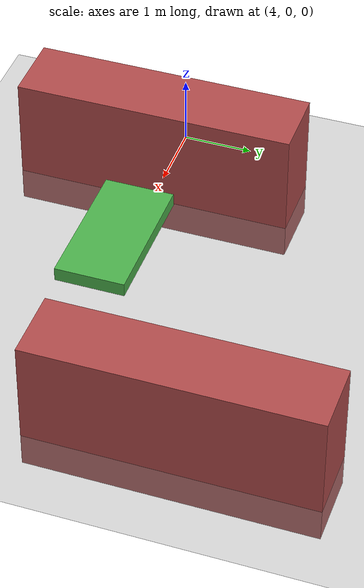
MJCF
<?xml version="1.0"?>
<!-- Simple obstacle course example -->
<mujoco model="obstacle_course">
  <option timestep="0.002" gravity="0 0 -9.81"/>

  <asset>
    <material name="obstacle" rgba="0.7 0.3 0.3 1"/>
    <material name="platform" rgba="0.3 0.7 0.3 1"/>
  </asset>

  <worldbody>
    <!-- Ground -->
    <geom name="ground" type="plane" size="20 20 0.1" rgba="0.5 0.5 0.5 1"/>

    <!-- Obstacle 1 -->
    <body name="obstacle_1" pos="5 0 0.5">
      <geom type="box" size="0.5 2 1" material="obstacle"/>
    </body>

    <!-- Obstacle 2 -->
    <body name="obstacle_2" pos="10 2 0.5">
      <geom type="box" size="0.5 2 1" material="obstacle"/>
    </body>

    <!-- Moving platform -->
    <body name="platform_1" pos="7 0 0.5">
      <joint name="platform_joint" type="slide" axis="0 1 0"/>
      <geom type="box" size="1 0.5 0.1" material="platform"/>
    </body>
  </worldbody>

  <actuator>
    <motor name="platform_motor" joint="platform_joint" gear="1.0"/>
  </actuator>
</mujoco>
